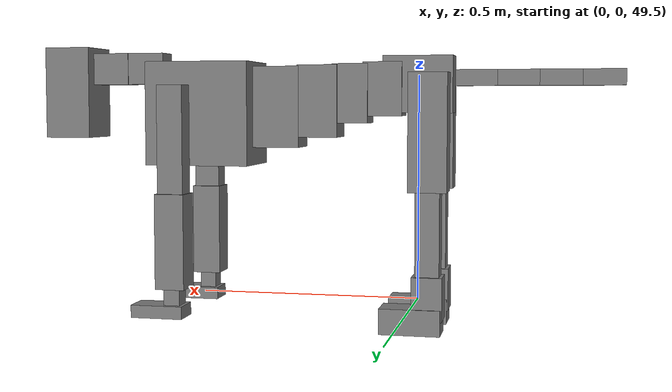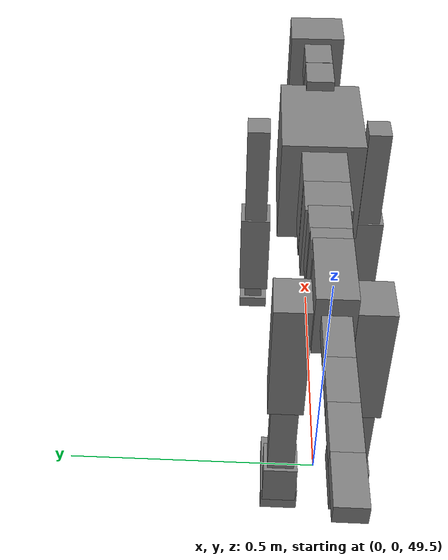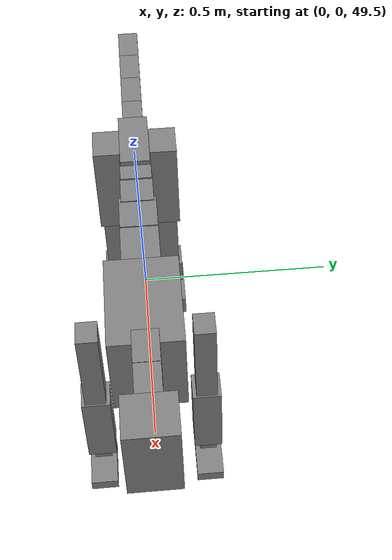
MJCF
<mujoco model="dog">

    <default>
        <joint armature="0.02" stiffness="1" damping="0.2" limited="true"/>
        <geom condim="3" friction="1 0.05 0.05" margin="0.01"/>
        <motor ctrllimited="true" ctrlrange="-1.0 1.0" forcelimited="true" gear="50"/>
    </default>

    <compiler inertiafromgeom="true" angle="radian"/>

    <option timestep="0.016" iterations="50" tolerance="1e-10" solver="Newton" jacobian="dense" cone="pyramidal"/>

    <size nconmax="20000" njmax="60000" nstack="5000000"/>
    <visual>
        <map force="0.1" zfar="30"/>
        <rgba haze="0.15 0.25 0.35 1"/>
        <quality shadowsize="2048"/>
        <global offwidth="800" offheight="800"/>
    </visual>

    <asset>
        <texture type="skybox" builtin="gradient" rgb1="0.3 0.5 0.7" rgb2="0 0 0" width="512" height="512"/>
        <texture name="texplane" type="2d" builtin="checker" rgb1=".2 .3 .4" rgb2=".1 0.15 0.2" width="512" height="512"
                 mark="cross" markrgb=".8 .8 .8"/>
        <texture name="texgeom" type="cube" builtin="flat" mark="cross" width="127" height="1278" rgb1="0.8 0.6 0.4"
                 rgb2="0.8 0.6 0.4" markrgb="1 1 1" random="0.01"/>

        <material name="matplane" reflectance="0.3" texture="texplane" texrepeat="1 1" texuniform="true"/>
        <material name="matgeom" texture="texgeom" texuniform="true" rgba="0.8 0.6 .4 1"/>
    </asset>

    <worldbody>
        <geom name="floor" pos="0 0 0" size="0 0 .25" type="plane" material="matplane" condim="3"/>

        <light directional="false" diffuse=".2 .2 .2" specular="0 0 0" pos="0 0 5" dir="0 0 -1" castshadow="false"/>
        <light mode="targetbodycom" target="torso" directional="false" diffuse=".8 .8 .8" specular="0.3 0.3 0.3"
               pos="0 0 4.0" dir="0 0 -1"/>

        <body name="root" pos="0 0 50">
            <freejoint name="root_1"/>
            <geom type="box" pos="0 0 -0.02" size="0.0774  0.0358  0.063" density="2030"/>

            <body name="spine1" pos="0.054 0 0">
                <joint name="spine1_y" axis="0 1 0" range="0 0.7" limited="true"/>
                <geom type="box" pos="0.02375 0 -0.03" size="0.04375  0.0375  0.05985" density="2030"/>

                <body name="spine2" pos="0.0612 0 0">
                    <joint name="spine2_y" axis="0 1 0" range="-0.15 0.15" limited="true"/>
                    <geom type="box" pos="0.03555  0  -0.04" size="0.04055  0.039  0.06615" density="2030"/>

                    <body name="spine3" pos="0.0730 0 0">
                        <joint name="spine3_y" axis="0 1 0" range="-0.15 0.15" limited="true"/>
                        <geom type="box" pos="0.03555  0  -0.057" size="0.04555  0.0445  0.081" density="2030"/>

                        <body name="spine4" pos="0.0780 0 0">
                            <joint name="spine4_y" axis="0 1 0" range="-0.15 0.15" limited="true"/>
                            <geom type="box" pos="0.05265  0  -0.07" size="0.05265  0.045  0.09135" density="2030"/>

                            <body name="torso" pos="0.1082 0 0">
                                <joint name="torso_y" axis="0 1 0" range="-0.15 0.15" limited="true"/>
                                <geom type="box" pos="0.11925  0  -0.085" size="0.11925  0.085  0.11745"
                                      density="2030"/>

                                <body name="neck1" pos="0.2160  0   0.0180">
                                    <joint name="neck1_y" axis="0 1 0" range="-1.2  -1" limited="true"/>
                                    <geom type="box" pos="0.0423  0  0" size="0.0423  0.03  0.036" density="2325"/>

                                    <body name="neck2" pos="0.0853  0  0">
                                        <joint name="neck2_y" axis="0 1 0" range="0.1  0" limited="true"/>
                                        <geom type="box" pos="0.0423  0  0" size="0.0423  0.03  0.036" density="2325"/>

                                        <body name="head" pos="0.0853  0  0">
                                            <joint name="head_y" axis="0 1 0" range="-0.3  -0.2" limited="true"/>
                                            <geom type="box" pos="0.0531  0  -0.055" size="0.0531  0.06  0.1044"
                                                  density="4030"/>

                                        </body>
                                    </body>
                                </body>

                                <body name="front_shoulder" pos="0.156  0   -0.0480">
                                    <joint name="front_shoulder_y" axis="0 1 0" range="-1 1.5" limited="true"/>
                                    <geom type="box" pos="0 0.13 -0.1069" size="0.0290  0.0248  0.1336" density="1158"/>
                                    <geom type="box" pos="0 -0.13 -0.1069" size="0.0290  0.0248  0.1336"
                                          density="1158"/>

                                    <body name="front_elbow" pos="0  0  -0.2138">
                                        <joint name="front_elbow_y" axis="0 1 0" range="-2 0" limited="true"/>
                                        <geom type="box" pos="0 0.13 -0.1056" size="0.0331  0.0338  0.1056"
                                              density="1081"/>
                                        <geom type="box" pos="0 -0.13 -0.1056" size="0.0331  0.0338  0.1056"
                                              density="1081"/>

                                        <body name="front_wrist" pos="0  0  -0.2112">
                                            <joint name="front_wrist_y" axis="0 1 0" range="-0.2 0" limited="true"/>
                                            <geom type="box" pos="0 0.13 -0.0260" size="0.0184  0.0204  0.0392"
                                                  density="1664"/>
                                            <geom type="box" pos="0 -0.13 -0.0260" size="0.0184  0.0204  0.0392"
                                                  density="1664"/>

                                            <body name="front_finger_end" pos="0  0  -0.0520">
                                                <joint name="front_finger_y" axis="0 1 0" range="-0.4 1"
                                                       limited="true"/>
                                                <geom type="box" pos="0.0322  0.13  0.0009"
                                                      size="0.0590  0.0322  0.0141" density="1515"/>
                                                <geom type="box" pos="0.0322  -0.13  0.0009"
                                                      size="0.0590  0.0322  0.0141" density="1515"/>

                                            </body>

                                        </body>
                                    </body>
                                </body>

                            </body>
                        </body>
                    </body>
                </body>
            </body>

            <body name="back_hip" pos="-0.03 0 -0.018">
                <joint name="back_hip_y" axis="0 1 0" range="-1.5 0.3" limited="true"/>
                <geom type="box" pos="0 0.07 -0.1065" size="0.0422  0.0331  0.1293" density="1154"/>
                <geom type="box" pos="0 -0.07 -0.1065" size="0.0422  0.0331  0.1293" density="1154"/>

                <body name="back_knee" pos="0  0  -0.2129">
                    <joint name="back_knee_y" axis="0 1 0" range="0 2.8" limited="true"/>
                    <geom type="box" pos="0 0.07 -0.1087" size="0.0264  0.0260  0.1243" density="1227"/>
                    <geom type="box" pos="0 -0.07 -0.1087" size="0.0264  0.0260  0.1243" density="1227"/>

                    <body name="back_ankle" pos="0  0  -0.2175">
                        <joint name="back_ankle_y" axis="0 1 0" range="-2.2 0" limited="true"/>
                        <geom type="box" pos="0 0.07 -0.0368" size="0.0333  0.0333  0.0481" density="1284"/>
                        <geom type="box" pos="0 -0.07 -0.0368" size="0.0333  0.0333  0.0481" density="1284"/>

                        <body name="back_toe_end" pos="0  0  -0.0737">
                            <joint name="back_toe_y" axis="0 1 0" range="-0.4 1" limited="true"/>
                            <geom type="box" pos="0.0364  0.07  -0.0134" size="0.0667  0.0364  0.0284" density="1515"/>
                            <geom type="box" pos="0.0364  -0.07  -0.0134" size="0.0667  0.0364  0.0284" density="1515"/>

                        </body>
                    </body>
                </body>
            </body>

            <body name="tail1" pos="-0.074 0 -0.006">
                <joint name="tail1_y" axis="0 1 0" range="-0.2 0.2" limited="true"/>
                <geom type="box" pos="-0.0536  0  0" size="0.045  0.025  0.0175" density="1587"/>

                <body name="tail2" pos="-0.09 0 0">
                    <joint name="tail2_y" axis="0 1 0" range="-0.2 0.2" limited="true"/>
                    <geom type="box" pos="-0.0536  0  0" size="0.045  0.025  0.0175" density="1587"/>

                    <body name="tail3" pos="-0.09 0 0">
                        <joint name="tail3_y" axis="0 1 0" range="-0.2 0.2" limited="true"/>
                        <geom type="box" pos="-0.0536  0  0" size="0.045  0.025  0.0175" density="1587"/>

                        <body name="tail4" pos="-0.09 0 0">
                            <joint name="tail4_y" axis="0 1 0" range="-0.2 0.2" limited="true"/>
                            <geom type="box" pos="-0.0536  0  0" size="0.045  0.025  0.0175" density="1587"/>

                        </body>
                    </body>
                </body>
            </body>
        </body>
    </worldbody>

    <actuator>
        <motor joint="spine1_y" forcerange="-150 150     "/>
        <motor joint="spine2_y" forcerange="-150 150     "/>
        <motor joint="spine3_y" forcerange="-150 150     "/>
        <motor joint="spine4_y" forcerange="-150 150     "/>
        <motor joint="torso_y" forcerange="-150 150     "/>
        <motor joint="neck1_y" forcerange="-100 100       "/>
        <motor joint="neck2_y" forcerange="-100 100       "/>
        <motor joint="head_y" forcerange="-150 150       "/>
        <motor joint="front_shoulder_y" forcerange="-140.98 124.47"/>
        <motor joint="front_elbow_y" forcerange="-197.65 148.10"/>
        <motor joint="front_wrist_y" forcerange="-60.70 102.82"/>
        <motor joint="front_finger_y" forcerange="-88.30 43.38"/>
        <motor joint="back_hip_y" forcerange="-319.56 321.64"/>
        <motor joint="back_knee_y" forcerange="-362.21 216.65"/>
        <motor joint="back_angle_y" forcerange="-208.08 225.48"/>
        <motor joint="back_toe_y" forcerange="-82.71 128.31"/>
        <motor joint="tail1_y" forcerange="-50 50     "/>
        <motor joint="tail2_y" forcerange="-50 50     "/>
        <motor joint="tail3_y" forcerange="-50 50     "/>
        <motor joint="tail4_y" forcerange="-50 50     "/>
    </actuator>
</mujoco>
